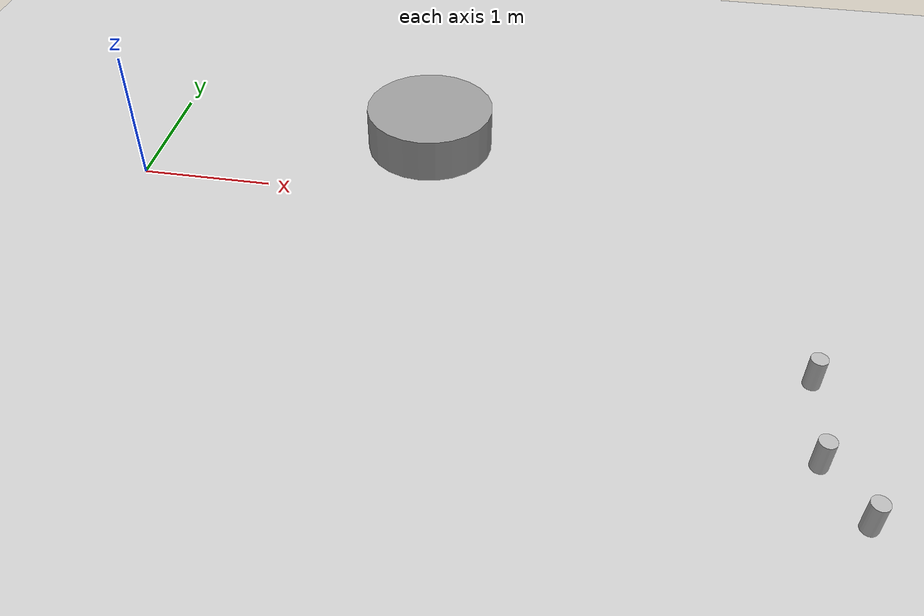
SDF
<sdf version="1.7">
 <world name="default">
  <model name="ground_plane">
   <static>1</static>
   <link name="link">
    <collision name="collision">
     <geometry><plane><normal>0 0 1</normal><size>100 100</size></plane></geometry>
     <surface><friction><ode><mu>100</mu><mu2>50</mu2></ode></friction></surface>
    </collision>
    <visual name="visual">
     <cast_shadows>0</cast_shadows>
     <geometry><plane><normal>0 0 1</normal><size>100 100</size></plane></geometry>
     <material>
      <script><uri>file://media/materials/scripts/gazebo.material</uri><name>Gazebo/Grey</name></script>
     </material>
    </visual>
   </link>
  </model>
  <model name="unit_cylinder">
   <pose>2.14694 0.738304 0.175627 0 -0 2.7e-05</pose>
   <link name="link">
    <inertial>
     <mass>1</mass>
     <inertia><ixx>0.145833</ixx><ixy>0</ixy><ixz>0</ixz><iyy>0.145833</iyy><iyz>0</iyz><izz>0.125</izz></inertia>
    </inertial>
    <collision name="collision">
     <geometry><cylinder><radius>0.5</radius><length>0.351255</length></cylinder></geometry>
    </collision>
    <visual name="visual">
     <geometry><cylinder><radius>0.5</radius><length>0.351255</length></cylinder></geometry>
     <material>
      <script><name>Gazebo/Grey</name><uri>file://media/materials/scripts/gazebo.material</uri></script>
     </material>
    </visual>
   </link>
  </model>
  <model name="beer">
   <link name="link">
    <pose>0 0 0.115 0 -0 0</pose>
    <inertial>
     <mass>0.39</mass>
     <inertia><ixx>0.00058</ixx><ixy>0</ixy><ixz>0</ixz><iyy>0.00058</iyy><iyz>0</iyz><izz>0.00019</izz></inertia>
    </inertial>
    <collision name="collision">
     <geometry><cylinder><radius>0.055</radius><length>0.23</length></cylinder></geometry>
    </collision>
    <visual name="visual">
     <geometry><cylinder><radius>0.055</radius><length>0.23</length></cylinder></geometry>
     <material>
      <script>
       <uri>model://beer/materials/scripts</uri>
       <uri>model://beer/materials/textures</uri>
       <name>Beer/Diffuse</name>
      </script>
     </material>
    </visual>
   </link>
   <pose>4.90394 -2.0568 -7e-06 -1e-06 -0 -0.599607</pose>
  </model>
  <model name="beer_clone_0">
   <link name="link">
    <pose>0 0 0.115 0 -0 0</pose>
    <inertial>
     <mass>0.39</mass>
     <inertia><ixx>0.00058</ixx><ixy>0</ixy><ixz>0</ixz><iyy>0.00058</iyy><iyz>0</iyz><izz>0.00019</izz></inertia>
    </inertial>
    <collision name="collision">
     <geometry><cylinder><radius>0.055</radius><length>0.23</length></cylinder></geometry>
    </collision>
    <visual name="visual">
     <geometry><cylinder><radius>0.055</radius><length>0.23</length></cylinder></geometry>
     <material>
      <script>
       <uri>model://beer/materials/scripts</uri>
       <uri>model://beer/materials/textures</uri>
       <name>Beer/Diffuse</name>
      </script>
     </material>
    </visual>
   </link>
   <pose>4.92994 -1.42291 -2e-06 0 -1e-06 0.799568</pose>
  </model>
  <model name="beer_clone_2">
   <link name="link">
    <pose>0 0 0.115 0 -0 0</pose>
    <inertial>
     <mass>0.39</mass>
     <inertia><ixx>0.00058</ixx><ixy>0</ixy><ixz>0</ixz><iyy>0.00058</iyy><iyz>0</iyz><izz>0.00019</izz></inertia>
    </inertial>
    <collision name="collision">
     <geometry><cylinder><radius>0.055</radius><length>0.23</length></cylinder></geometry>
    </collision>
    <visual name="visual">
     <geometry><cylinder><radius>0.055</radius><length>0.23</length></cylinder></geometry>
     <material>
      <script>
       <uri>model://beer/materials/scripts</uri>
       <uri>model://beer/materials/textures</uri>
       <name>Beer/Diffuse</name>
      </script>
     </material>
    </visual>
   </link>
   <pose>5.1257 -2.43166 -7e-06 0 1e-06 1.23376</pose>
  </model>
 </world>
</sdf>
